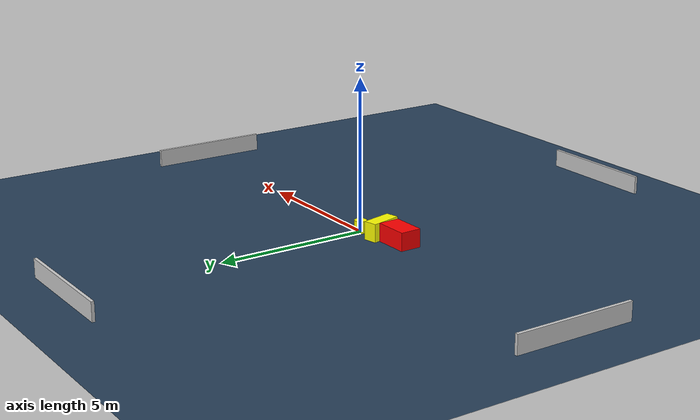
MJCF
<?xml version="1.0" ?>
<mujoco model="generated_environment">
  <option timestep="0.01" integrator="RK4" cone="elliptic"/>
  <default>
    <geom density="1"/>
  </default>
  <asset>
    <texture builtin="gradient" height="3072" name="skybox" rgb1="0.3 0.5 0.7" rgb2="0 0 0" type="skybox" width="512"/>
    <texture builtin="checker" height="300" name="groundplane" rgb1="0.2 0.3 0.4" rgb2="0.1 0.2 0.3" type="2d" width="300"/>
    <material name="groundplane" reflectance="0.2" texrepeat="5 5" texture="groundplane"/>
  </asset>
  <worldbody>
    <light dir="0 0 -1" directional="true" pos="0 0 1.5"/>
    <geom condim="3" friction="0.5 0.005 0.001" material="groundplane" name="floor" pos="0 0 0" size="0 0 0.05" type="plane"/>
    <body name="walls">
      <geom name="wall_1" condim="4" pos="-10.0 0.0 0.3" rgba="0.800000011920929 0.800000011920929 0.800000011920929 1.0" size="0.05 2.0 0.3" type="box"/>
      <geom name="wall_2" condim="4" pos="10.0 0.0 0.3" rgba="0.800000011920929 0.800000011920929 0.800000011920929 1.0" size="0.05 2.0 0.3" type="box"/>
      <geom name="wall_3" condim="4" pos="0.0 -10.0 0.3" rgba="0.800000011920929 0.800000011920929 0.800000011920929 1.0" size="2.0 0.05 0.3" type="box"/>
      <geom name="wall_4" condim="4" pos="0.0 10.0 0.3" rgba="0.800000011920929 0.800000011920929 0.800000011920929 1.0" size="2.0 0.05 0.3" type="box"/>
    </body>
    <body name="robot">
      <joint name="joint_x" type="slide" pos="0 0 0" axis="1 0 0"/>
      <joint name="joint_y" type="slide" pos="0 0 0" axis="0 1 0"/>
      <geom name="robot" type="cylinder" pos="0.0 0.0 0.2" size="0.2 0.2 0.0" mass="5.0" friction="1.0 0.005 0.0001" condim="4" rgba="1.0 1.0 0.0 1.0"/>
    </body>
    <body name="obstacle_1_movable">
      <geom name="obstacle_1_movable" condim="4" pos="-0.757157510831309 -0.268730560913787 0.3" euler="0 0 283.02093925771675" friction="0.0 0.005 0.001" rgba="1.0 1.0 0.0 1.0" size="0.5192360163893395 0.2192124802014843 0.3" type="box" mass="0.1"/>
      <joint type="free"/>
    </body>
    <body name="obstacle_2_static">
      <geom name="obstacle_2_static" condim="4" pos="-1.6156383202480724 -0.3674310691474424 0.3" euler="0 0 181.14997853638857" friction="0.0 0.005 0.001" rgba="1.0 0.0 0.0 1.0" size="0.5701640038187346 0.35524662023083686 0.3" type="box"/>
    </body>
  </worldbody>
  <actuator>
    <motor name="actuator_x" joint="joint_x" gear="1" ctrlrange="-1 1"/>
    <motor name="actuator_y" joint="joint_y" gear="1" ctrlrange="-1 1"/>
  </actuator>
</mujoco>
